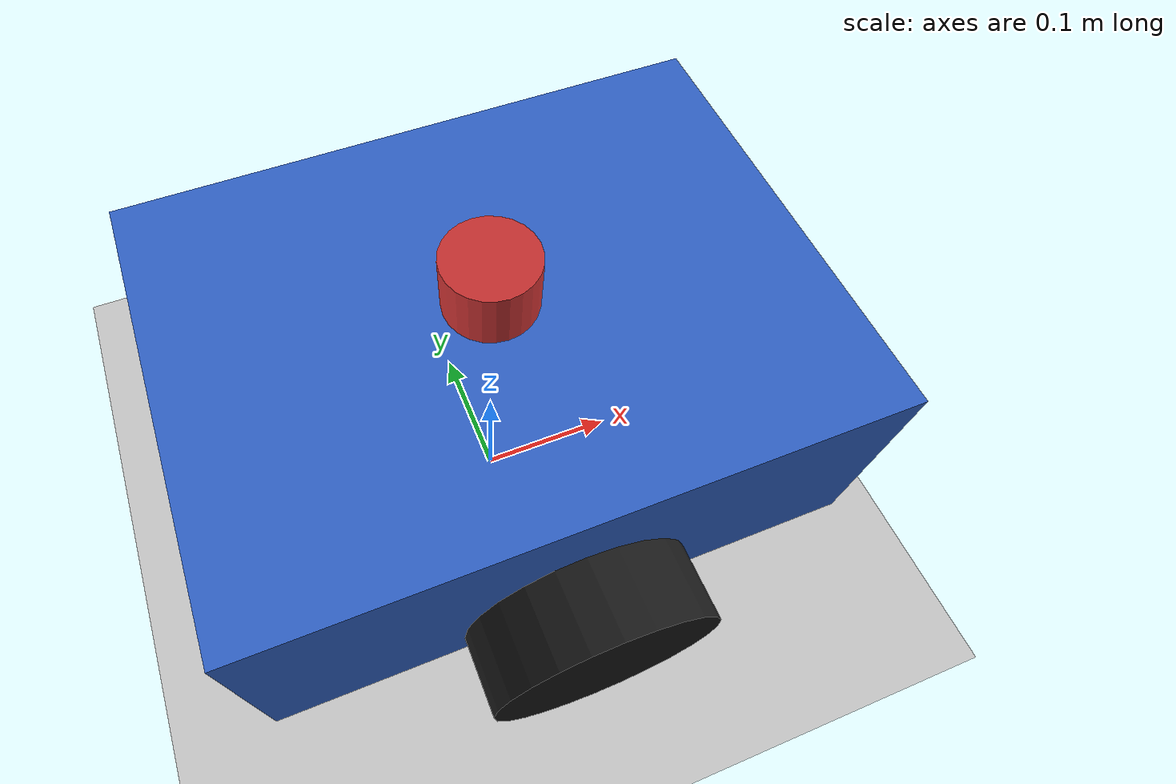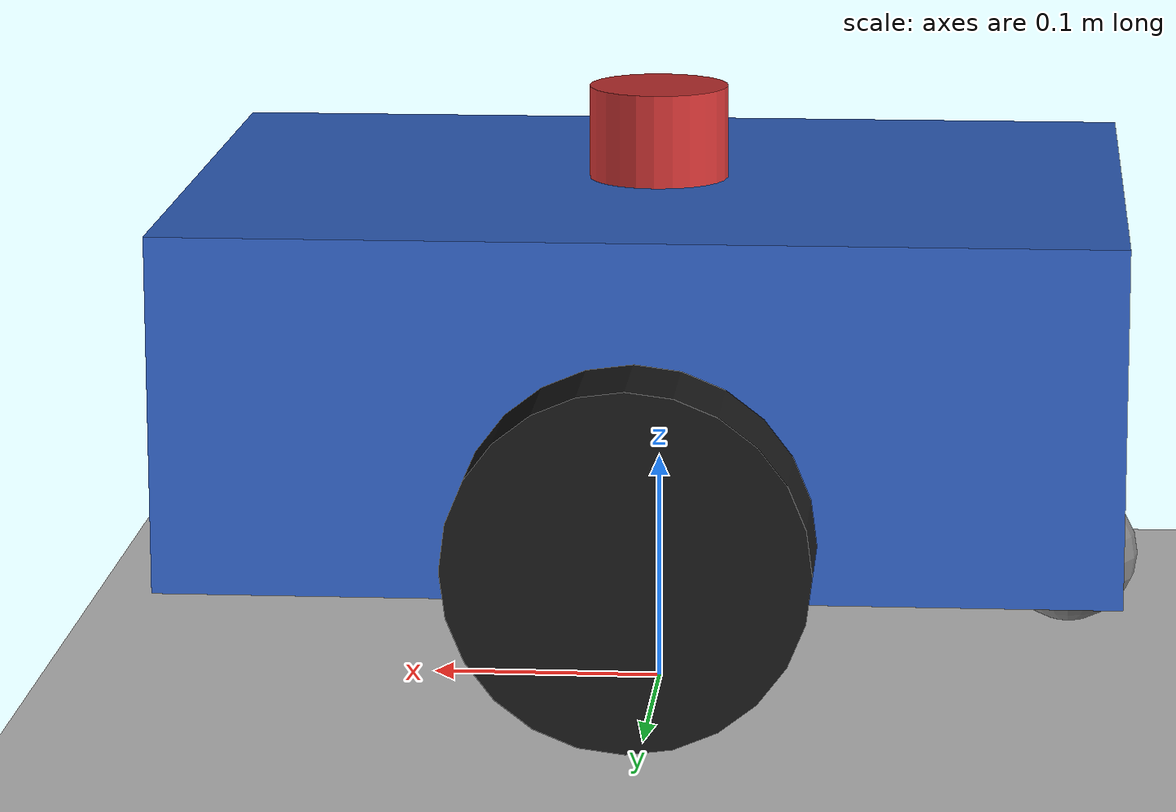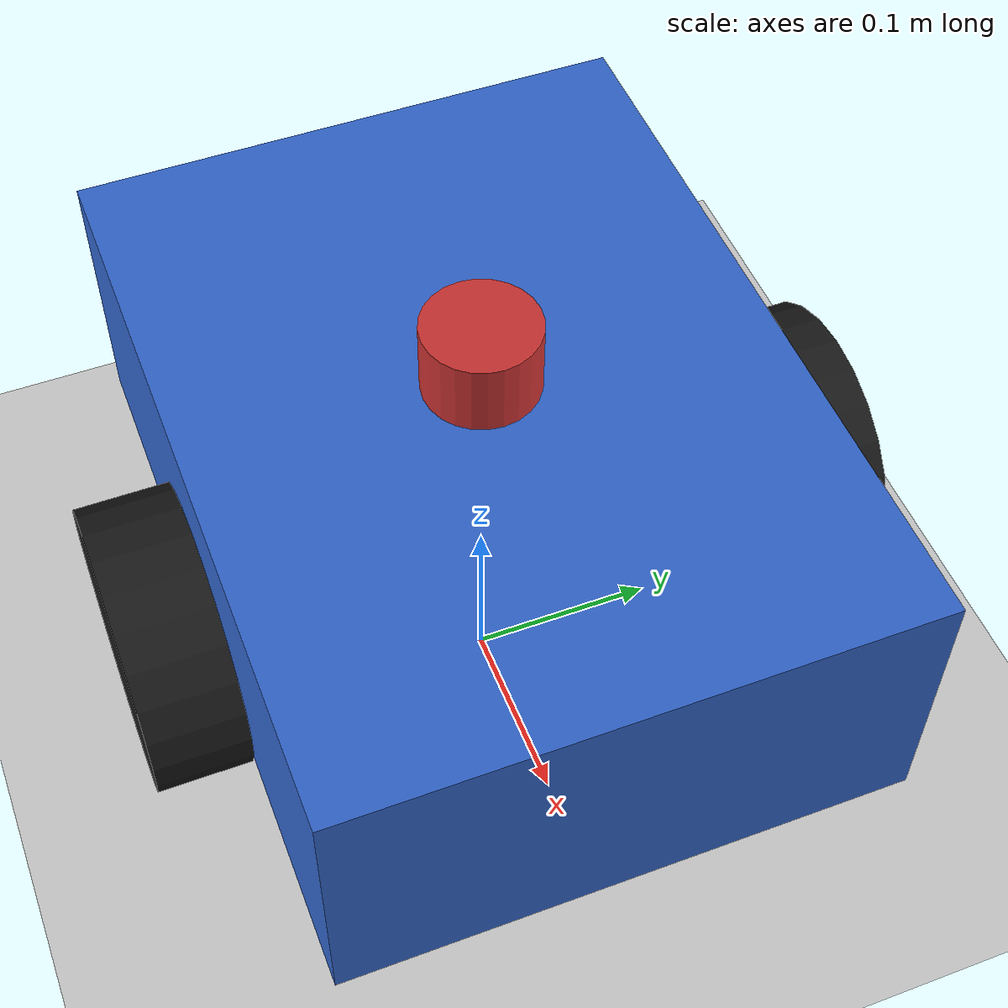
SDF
<?xml version="1.0"?>
<sdf version="1.9">
  <world name="preview">
    <physics name="1ms" type="ode">
      <max_step_size>0.001</max_step_size>
      <real_time_factor>1.0</real_time_factor>
    </physics>

    <plugin filename="gz-sim-physics-system"
            name="gz::sim::systems::Physics"/>
    <plugin filename="gz-sim-user-commands-system"
            name="gz::sim::systems::UserCommands"/>
    <plugin filename="gz-sim-scene-broadcaster-system"
            name="gz::sim::systems::SceneBroadcaster"/>

    <light name="sun" type="directional">
      <cast_shadows>true</cast_shadows>
      <pose>0 0 10 0 0 0</pose>
      <diffuse>1 1 1 1</diffuse>
      <specular>0.5 0.5 0.5 1</specular>
      <direction>-0.5 0.1 -0.9</direction>
    </light>

    <model name="ground_plane">
      <static>true</static>
      <link name="link">
        <collision name="collision">
          <geometry><plane><normal>0 0 1</normal></plane></geometry>
        </collision>
        <visual name="visual">
          <geometry><plane><normal>0 0 1</normal><size>20 20</size></plane></geometry>
          <material>
            <ambient>0.8 0.8 0.8 1</ambient>
            <diffuse>0.8 0.8 0.8 1</diffuse>
          </material>
        </visual>
      </link>
    </model>

    <!-- demo_robot inlined to avoid GZ_SIM_RESOURCE_PATH lookup -->
    <model name="demo_robot">
      <pose>0 0 0.15 0 0 0</pose>

      <link name="base_link">
        <inertial>
          <mass>5.0</mass>
          <inertia>
            <ixx>0.0508</ixx><ixy>0</ixy><ixz>0</ixz>
            <iyy>0.0958</iyy><iyz>0</iyz><izz>0.1383</izz>
          </inertia>
        </inertial>
        <visual name="chassis_visual">
          <geometry><box><size>0.4 0.3 0.15</size></box></geometry>
          <material>
            <ambient>0.2 0.4 0.8 1</ambient>
            <diffuse>0.2 0.4 0.8 1</diffuse>
          </material>
        </visual>
        <collision name="chassis_collision">
          <geometry><box><size>0.4 0.3 0.15</size></box></geometry>
        </collision>
      </link>

      <link name="left_wheel">
        <pose>0 0.175 -0.05 1.5708 0 0</pose>
        <inertial>
          <mass>0.5</mass>
          <inertia>
            <ixx>0.000703</ixx><ixy>0</ixy><ixz>0</ixz>
            <iyy>0.000703</iyy><iyz>0</iyz><izz>0.001406</izz>
          </inertia>
        </inertial>
        <visual name="left_wheel_visual">
          <geometry><cylinder><radius>0.075</radius><length>0.05</length></cylinder></geometry>
          <material><ambient>0.1 0.1 0.1 1</ambient><diffuse>0.1 0.1 0.1 1</diffuse></material>
        </visual>
        <collision name="left_wheel_collision">
          <geometry><cylinder><radius>0.075</radius><length>0.05</length></cylinder></geometry>
          <surface><friction><ode><mu>1.0</mu><mu2>1.0</mu2></ode></friction></surface>
        </collision>
      </link>

      <joint name="left_wheel_joint" type="revolute">
        <parent>base_link</parent><child>left_wheel</child>
        <axis><xyz>0 0 1</xyz><limit><effort>10</effort><velocity>10</velocity></limit></axis>
      </joint>

      <link name="right_wheel">
        <pose>0 -0.175 -0.05 1.5708 0 0</pose>
        <inertial>
          <mass>0.5</mass>
          <inertia>
            <ixx>0.000703</ixx><ixy>0</ixy><ixz>0</ixz>
            <iyy>0.000703</iyy><iyz>0</iyz><izz>0.001406</izz>
          </inertia>
        </inertial>
        <visual name="right_wheel_visual">
          <geometry><cylinder><radius>0.075</radius><length>0.05</length></cylinder></geometry>
          <material><ambient>0.1 0.1 0.1 1</ambient><diffuse>0.1 0.1 0.1 1</diffuse></material>
        </visual>
        <collision name="right_wheel_collision">
          <geometry><cylinder><radius>0.075</radius><length>0.05</length></cylinder></geometry>
          <surface><friction><ode><mu>1.0</mu><mu2>1.0</mu2></ode></friction></surface>
        </collision>
      </link>

      <joint name="right_wheel_joint" type="revolute">
        <parent>base_link</parent><child>right_wheel</child>
        <axis><xyz>0 0 1</xyz><limit><effort>10</effort><velocity>10</velocity></limit></axis>
      </joint>

      <link name="caster">
        <pose>-0.18 0 -0.09 0 0 0</pose>
        <inertial>
          <mass>0.1</mass>
          <inertia>
            <ixx>0.000036</ixx><ixy>0</ixy><ixz>0</ixz>
            <iyy>0.000036</iyy><iyz>0</iyz><izz>0.000036</izz>
          </inertia>
        </inertial>
        <visual name="caster_visual">
          <geometry><sphere><radius>0.03</radius></sphere></geometry>
          <material><ambient>0.5 0.5 0.5 1</ambient><diffuse>0.5 0.5 0.5 1</diffuse></material>
        </visual>
        <collision name="caster_collision">
          <geometry><sphere><radius>0.03</radius></sphere></geometry>
          <surface><friction><ode><mu>0</mu><mu2>0</mu2></ode></friction></surface>
        </collision>
      </link>

      <joint name="caster_joint" type="fixed">
        <parent>base_link</parent><child>caster</child>
      </joint>

      <link name="lidar_link">
        <pose>0 0 0.095 0 0 0</pose>
        <inertial>
          <mass>0.1</mass>
          <inertia>
            <ixx>0.0000045</ixx><ixy>0</ixy><ixz>0</ixz>
            <iyy>0.0000045</iyy><iyz>0</iyz><izz>0.0000045</izz>
          </inertia>
        </inertial>
        <visual name="lidar_visual">
          <geometry><cylinder><radius>0.03</radius><length>0.04</length></cylinder></geometry>
          <material><ambient>0.8 0.2 0.2 1</ambient><diffuse>0.8 0.2 0.2 1</diffuse></material>
        </visual>
        <collision name="lidar_collision">
          <geometry><cylinder><radius>0.03</radius><length>0.04</length></cylinder></geometry>
        </collision>
      </link>

      <joint name="lidar_joint" type="fixed">
        <parent>base_link</parent><child>lidar_link</child>
      </joint>

      <plugin filename="gz-sim-diff-drive-system"
              name="gz::sim::systems::DiffDrive">
        <left_joint>left_wheel_joint</left_joint>
        <right_joint>right_wheel_joint</right_joint>
        <wheel_separation>0.35</wheel_separation>
        <wheel_radius>0.075</wheel_radius>
        <topic>cmd_vel</topic>
        <odom_topic>odom</odom_topic>
        <tf_topic>tf</tf_topic>
        <frame_id>odom</frame_id>
        <child_frame_id>base_link</child_frame_id>
      </plugin>

      <plugin filename="gz-sim-odometry-publisher-system"
              name="gz::sim::systems::OdometryPublisher">
        <odom_frame>odom</odom_frame>
        <robot_base_frame>base_link</robot_base_frame>
      </plugin>

    </model>
  </world>
</sdf>
